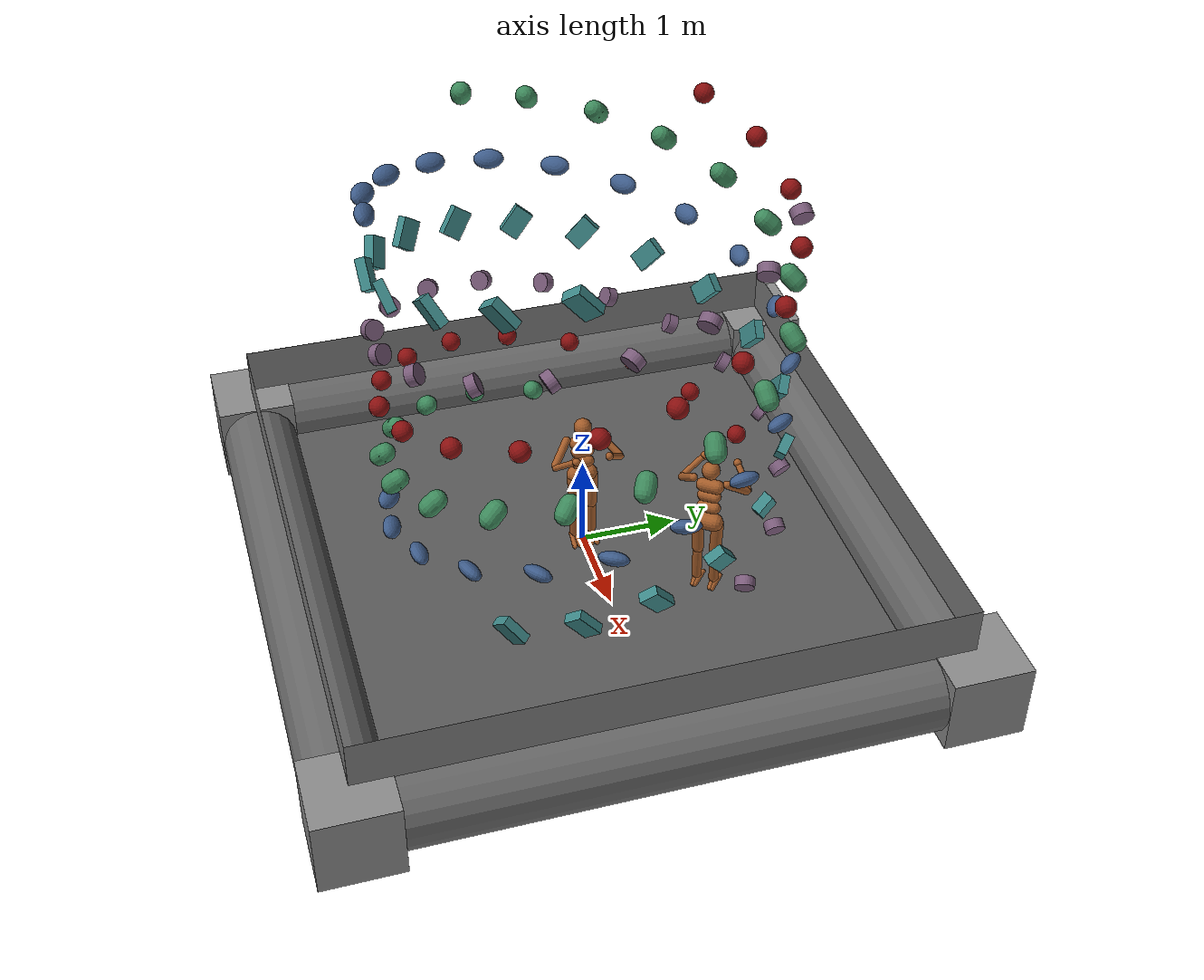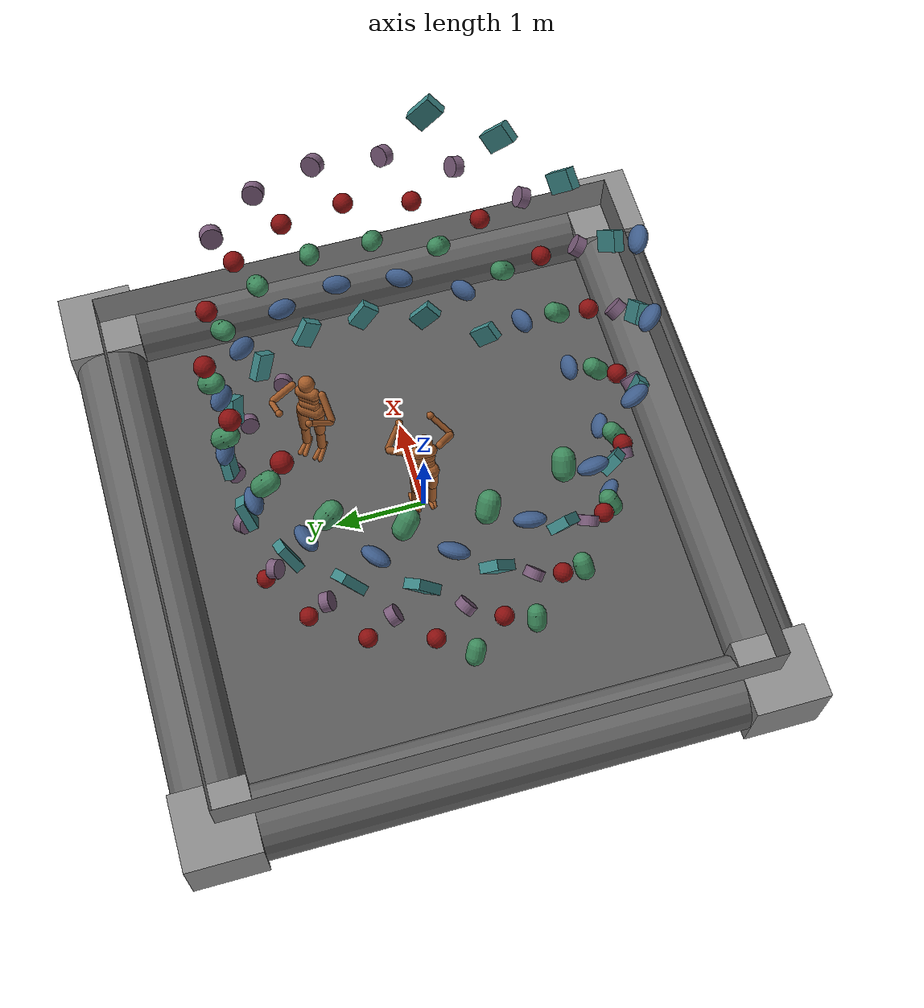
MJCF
<mujoco model="2 Humanoids and 100 objects">
  <compiler angle="radian"/>

  <option timestep="0.005" gravity="-1 -1 -10">
    <flag island="disable"/>
  </option>

  <size memory="100M" nkey="8"/>

  <visual>
    <quality offsamples="8"/>
    <map force="0.05" znear="0.1"/>
  </visual>

  <statistic extent="4"/>

  <default>
    <geom solimp="0.9 0.9 0.01"/>
    <default class="capsule">
      <geom size="0.1 0.05 0" type="capsule" material="capsule"/>
    </default>
    <default class="ellipsoid">
      <geom size="0.15 0.1 0.07" type="ellipsoid" material="ellipsoid"/>
    </default>
    <default class="box">
      <geom size="0.15 0.1 0.05" type="box" material="box"/>
    </default>
    <default class="cylinder">
      <geom size="0.1 0.05 0" type="cylinder" condim="4" friction="1 0.01 0.01" material="cylinder"/>
    </default>
    <default class="sphere">
      <geom size="0.1 0 0" material="sphere"/>
    </default>
    <default class="border">
      <geom size="0.4 0 0" type="capsule" rgba="0.4 0.4 0.4 1"/>
    </default>
    <default class="borderpost">
      <geom size="0.41 0.41 0.41" type="box" rgba="0.55 0.55 0.55 1"/>
    </default>
    <default class="1_main">
      <geom solimp="0.9 0.95 0.001"/>
      <general ctrllimited="true" ctrlrange="-1 1"/>
      <default class="1_body">
        <joint solimplimit="0 0.99 0.01" stiffness="1" limited="true" armature="0.01" damping="0.2"/>
        <geom type="capsule" condim="1" group="1" friction="0.7" solref="0.015" solimp="0.9 0.99 0.003" material="body"/>
        <default class="1_thigh">
          <geom size="0.06 0 0"/>
        </default>
        <default class="1_shin">
          <geom size="0.049 0 0"/>
        </default>
        <default class="1_foot">
          <geom size="0.027 0 0"/>
          <default class="1_foot1"/>
          <default class="1_foot2"/>
        </default>
        <default class="1_arm_upper">
          <geom size="0.04 0 0"/>
        </default>
        <default class="1_arm_lower">
          <geom size="0.031 0 0"/>
        </default>
        <default class="1_hand">
          <geom size="0.04 0 0" type="sphere"/>
        </default>
        <default class="1_joint_big">
          <joint stiffness="10" damping="5"/>
          <default class="1_hip_x">
            <joint range="-30 10"/>
          </default>
          <default class="1_hip_z">
            <joint range="-60 35"/>
          </default>
          <default class="1_hip_y">
            <joint range="-150 20"/>
          </default>
          <default class="1_joint_big_stiff">
            <joint stiffness="20"/>
          </default>
        </default>
        <default class="1_knee">
          <joint range="-160 2"/>
        </default>
        <default class="1_ankle">
          <joint range="-50 50"/>
          <default class="1_ankle_y">
            <joint stiffness="6"/>
          </default>
          <default class="1_ankle_x">
            <joint stiffness="3"/>
          </default>
        </default>
        <default class="1_shoulder">
          <joint range="-85 60"/>
        </default>
        <default class="1_elbow">
          <joint stiffness="0" range="-100 50"/>
        </default>
      </default>
    </default>
    <default class="2_main">
      <geom solimp="0.9 0.95 0.001"/>
      <general ctrllimited="true" ctrlrange="-1 1"/>
      <default class="2_body">
        <joint solimplimit="0 0.99 0.01" stiffness="1" limited="true" armature="0.01" damping="0.2"/>
        <geom type="capsule" condim="1" group="1" friction="0.7" solref="0.015" solimp="0.9 0.99 0.003" material="body"/>
        <default class="2_thigh">
          <geom size="0.06 0 0"/>
        </default>
        <default class="2_shin">
          <geom size="0.049 0 0"/>
        </default>
        <default class="2_foot">
          <geom size="0.027 0 0"/>
          <default class="2_foot1"/>
          <default class="2_foot2"/>
        </default>
        <default class="2_arm_upper">
          <geom size="0.04 0 0"/>
        </default>
        <default class="2_arm_lower">
          <geom size="0.031 0 0"/>
        </default>
        <default class="2_hand">
          <geom size="0.04 0 0" type="sphere"/>
        </default>
        <default class="2_joint_big">
          <joint stiffness="10" damping="5"/>
          <default class="2_hip_x">
            <joint range="-30 10"/>
          </default>
          <default class="2_hip_z">
            <joint range="-60 35"/>
          </default>
          <default class="2_hip_y">
            <joint range="-150 20"/>
          </default>
          <default class="2_joint_big_stiff">
            <joint stiffness="20"/>
          </default>
        </default>
        <default class="2_knee">
          <joint range="-160 2"/>
        </default>
        <default class="2_ankle">
          <joint range="-50 50"/>
          <default class="2_ankle_y">
            <joint stiffness="6"/>
          </default>
          <default class="2_ankle_x">
            <joint stiffness="3"/>
          </default>
        </default>
        <default class="2_shoulder">
          <joint range="-85 60"/>
        </default>
        <default class="2_elbow">
          <joint stiffness="0" range="-100 50"/>
        </default>
      </default>
    </default>
  </default>

  <asset>
    <texture type="skybox" colorspace="auto" builtin="gradient" rgb1="0.4 0.6 0.8" rgb2="0 0 0" width="512" height="3072"/>
    <texture type="cube" colorspace="auto" name="texgeom" builtin="flat" mark="cross" rgb1="0.6 0.6 0.6" rgb2="0.6 0.6 0.6" markrgb="1 1 1" width="128" height="768"/>
    <texture type="2d" colorspace="auto" name="texplane" builtin="checker" rgb1="0.4 0.4 0.4" rgb2="0.6 0.6 0.6" width="512" height="512"/>
    <texture type="skybox" colorspace="auto" builtin="gradient" rgb1="0.3 0.5 0.7" rgb2="0 0 0" width="32" height="192"/>
    <texture type="cube" colorspace="auto" name="1_body" builtin="flat" mark="cross" rgb1="0.8 0.6 0.4" rgb2="0.8 0.6 0.4" markrgb="1 1 1" width="128" height="768"/>
    <texture type="2d" colorspace="auto" name="1_grid" builtin="checker" rgb1="0.1 0.2 0.3" rgb2="0.2 0.3 0.4" width="512" height="512"/>
    <texture type="skybox" colorspace="auto" builtin="gradient" rgb1="0.3 0.5 0.7" rgb2="0 0 0" width="32" height="192"/>
    <texture type="cube" colorspace="auto" name="2_body" builtin="flat" mark="cross" rgb1="0.8 0.6 0.4" rgb2="0.8 0.6 0.4" markrgb="1 1 1" width="128" height="768"/>
    <texture type="2d" colorspace="auto" name="2_grid" builtin="checker" rgb1="0.1 0.2 0.3" rgb2="0.2 0.3 0.4" width="512" height="512"/>
    <material name="MatPlane" texture="texplane" texuniform="true" reflectance="0.3" rgba="0.7 0.7 0.7 1"/>
    <material name="capsule" texture="texgeom" texuniform="true" rgba="0.4 0.9 0.6 1"/>
    <material name="ellipsoid" texture="texgeom" texuniform="true" rgba="0.4 0.6 0.9 1"/>
    <material name="box" texture="texgeom" texuniform="true" rgba="0.4 0.9 0.9 1"/>
    <material name="cylinder" texture="texgeom" texuniform="true" rgba="0.8 0.6 0.8 1"/>
    <material name="sphere" texture="texgeom" texuniform="true" rgba="0.9 0.1 0.1 1"/>
    <material name="1_body" texture="1_body" texuniform="true" rgba="0.8 0.6 0.4 1"/>
    <material name="1_grid" texture="1_grid" texuniform="true" reflectance="0.2"/>
    <material name="2_body" texture="2_body" texuniform="true" rgba="0.8 0.6 0.4 1"/>
    <material name="2_grid" texture="2_grid" texuniform="true" reflectance="0.2"/>
  </asset>

  <worldbody>
    <geom name="floor" size="3 3 0.5" type="plane" material="MatPlane"/>
    <geom class="border" size="0.4 3" pos="0 3 0" quat="0.707107 0 -0.707107 0"/>
    <geom class="border" size="0.4 3" pos="0 -3 0" quat="0.707107 0 -0.707107 0"/>
    <geom class="border" size="0.4 3" pos="3 0 0" quat="0.707107 -0.707107 0 0"/>
    <geom class="border" size="0.4 3" pos="-3 0 0" quat="0.707107 -0.707107 0 0"/>
    <geom class="borderpost" pos="3 3 0"/>
    <geom class="borderpost" pos="-3 3 0"/>
    <geom class="borderpost" pos="3 -3 0"/>
    <geom class="borderpost" pos="-3 -3 0"/>
    <light pos="0 0 10" dir="0 0 -1" type="directional" diffuse="0.8 0.8 0.8"/>
    <geom size="0.5 3 0.05" pos="-3 0 0.4" quat="0.707107 0 0.707107 0" type="plane"/>
    <geom size="0.5 3 0.05" pos="0 -3 0.4" quat="0.5 -0.5 0.5 0.5" type="plane"/>
    <geom size="0.5 3 0.05" pos="3 0 0.4" quat="0 -0.707107 0 0.707107" type="plane"/>
    <geom size="0.5 3 0.05" pos="0 3 0.4" quat="-0.5 -0.5 -0.5 0.5" type="plane"/>
    <body pos="-2 0 0.5" quat="0.907673 0.24321 0.330366 0.0885213">
      <joint type="free"/>
      <geom class="capsule"/>
    </body>
    <body pos="-1.87939 -0.68404 0.7" quat="0.878512 0.182148 0.36758 0.244792">
      <joint type="free"/>
      <geom class="capsule"/>
    </body>
    <body pos="-1.53209 -1.28558 0.9" quat="0.822658 0.115551 0.393625 0.393625">
      <joint type="free"/>
      <geom class="capsule"/>
    </body>
    <body pos="-1 -1.73205 1.1" quat="0.741808 0.0454433 0.407711 0.530498">
      <joint type="free"/>
      <geom class="capsule"/>
    </body>
    <body pos="-0.347296 -1.96962 1.3" quat="0.638418 -0.0260453 0.409408 0.651252">
      <joint type="free"/>
      <geom class="capsule"/>
    </body>
    <body pos="0.347296 -1.96962 1.5" quat="0.51563 -0.0967425 0.398665 0.752219">
      <joint type="free"/>
      <geom class="capsule"/>
    </body>
    <body pos="1 -1.73205 1.7" quat="0.377175 -0.1645 0.375809 0.830329">
      <joint type="free"/>
      <geom class="capsule"/>
    </body>
    <body pos="1.53209 -1.28558 1.9" quat="0.22726 -0.22726 0.341535 0.88321">
      <joint type="free"/>
      <geom class="capsule"/>
    </body>
    <body pos="1.87939 -0.68404 2.1" quat="0.0704393 -0.283114 0.296883 0.909255">
      <joint type="free"/>
      <geom class="capsule"/>
    </body>
    <body pos="2 0 2.3" quat="-0.0885213 -0.330366 0.24321 0.907673">
      <joint type="free"/>
      <geom class="capsule"/>
    </body>
    <body pos="1.87939 0.68404 2.5" quat="-0.244792 -0.36758 0.182148 0.878512">
      <joint type="free"/>
      <geom class="capsule"/>
    </body>
    <body pos="1.53209 1.28558 2.7" quat="-0.393625 -0.393625 0.115551 0.822658">
      <joint type="free"/>
      <geom class="capsule"/>
    </body>
    <body pos="1 1.73205 2.9" quat="-0.530498 -0.407711 0.0454433 0.741808">
      <joint type="free"/>
      <geom class="capsule"/>
    </body>
    <body pos="0.347296 1.96962 3.1" quat="-0.651252 -0.409408 -0.0260453 0.638418">
      <joint type="free"/>
      <geom class="capsule"/>
    </body>
    <body pos="-0.347296 1.96962 3.3" quat="-0.752219 -0.398665 -0.0967425 0.51563">
      <joint type="free"/>
      <geom class="capsule"/>
    </body>
    <body pos="-1 1.73205 3.5" quat="-0.830329 -0.375809 -0.1645 0.377175">
      <joint type="free"/>
      <geom class="capsule"/>
    </body>
    <body pos="-1.53209 1.28558 3.7" quat="-0.88321 -0.341535 -0.22726 0.22726">
      <joint type="free"/>
      <geom class="capsule"/>
    </body>
    <body pos="-1.87939 0.68404 3.9" quat="-0.909255 -0.296883 -0.283114 0.0704393">
      <joint type="free"/>
      <geom class="capsule"/>
    </body>
    <body pos="-2 0 4.1" quat="-0.907673 -0.24321 -0.330366 -0.0885213">
      <joint type="free"/>
      <geom class="capsule"/>
    </body>
    <body pos="-1.87939 -0.68404 4.3" quat="-0.878512 -0.182148 -0.36758 -0.244792">
      <joint type="free"/>
      <geom class="capsule"/>
    </body>
    <body name="1_torso" childclass="1_body" pos="0 0 1.282">
      <joint name="1_root" type="free" solimplimit="0.9 0.95 0.001" stiffness="0" armature="0" damping="0"/>
      <geom name="1_torso" size="0.07 0.07" quat="0.707107 0.707107 0 0" material="1_body"/>
      <geom name="1_waist_upper" size="0.06 0.06" pos="-0.01 0 -0.12" quat="0.707107 0.707107 0 0" material="1_body"/>
      <camera name="1_back" pos="-3 0 1" quat="0.601501 0.371748 -0.371748 -0.601501" mode="trackcom"/>
      <camera name="1_side" pos="0 -3 1" quat="0.850651 0.525731 0 0" mode="trackcom"/>
      <body name="1_head" pos="0 0 0.19">
        <geom name="1_head" size="0.09" type="sphere" material="1_body"/>
        <camera name="1_egocentric" pos="0.09 0 0" quat="0.524286 0.474472 -0.474472 -0.524286" fovy="80"/>
      </body>
      <body name="1_waist_lower" pos="-0.01 0 -0.26">
        <joint name="1_abdomen_z" class="1_joint_big_stiff" pos="0 0 0.065" axis="0 0 1" range="-0.785398 0.785398"/>
        <joint name="1_abdomen_y" class="1_joint_big" pos="0 0 0.065" axis="0 1 0" range="-1.309 0.523599"/>
        <geom name="1_waist_lower" size="0.06 0.06" quat="0.707107 0.707107 0 0" material="1_body"/>
        <body name="1_pelvis" pos="0 0 -0.165">
          <joint name="1_abdomen_x" class="1_joint_big" pos="0 0 0.1" axis="1 0 0" range="-0.610865 0.610865"/>
          <geom name="1_butt" size="0.09 0.07" pos="-0.02 0 0" quat="0.707107 0.707107 0 0" material="1_body"/>
          <body name="1_thigh_right" pos="0 -0.1 -0.04">
            <joint name="1_hip_x_right" class="1_hip_x" pos="0 0 0" axis="1 0 0" range="-0.523599 0.174533"/>
            <joint name="1_hip_z_right" class="1_hip_z" pos="0 0 0" axis="0 0 1" range="-1.0472 0.610865"/>
            <joint name="1_hip_y_right" class="1_hip_y" pos="0 0 0" axis="0 1 0" range="-2.61799 0.349066"/>
            <geom name="1_thigh_right" class="1_thigh" size="0.06 0.170074" pos="0 0.005 -0.17" quat="0.999892 0.0147011 0 0" material="1_body"/>
            <body name="1_shin_right" pos="0 0.01 -0.4">
              <joint name="1_knee_right" class="1_knee" pos="0 0 0.02" axis="0 -1 0" range="-2.79253 0.0349066"/>
              <geom name="1_shin_right" class="1_shin" size="0.049 0.15" pos="0 0 -0.15" material="1_body"/>
              <body name="1_foot_right" pos="0 0 -0.39">
                <joint name="1_ankle_y_right" class="1_ankle_y" pos="0 0 0.08" axis="0 1 0" range="-0.872665 0.872665"/>
                <joint name="1_ankle_x_right" class="1_ankle_x" pos="0 0 0.04" axis="0.894427 0 0.447214" range="-0.872665 0.872665"/>
                <geom name="1_foot1_right" class="1_foot1" size="0.027 0.105475" pos="0.035 -0.02 0" quat="0.707107 -0.0670402 -0.703922 0" material="1_body"/>
                <geom name="1_foot2_right" class="1_foot2" size="0.027 0.105475" pos="0.035 0.02 0" quat="0.707107 0.0670402 -0.703922 0" material="1_body"/>
              </body>
            </body>
          </body>
          <body name="1_thigh_left" pos="0 0.1 -0.04">
            <joint name="1_hip_x_left" class="1_hip_x" pos="0 0 0" axis="-1 0 0" range="-0.523599 0.174533"/>
            <joint name="1_hip_z_left" class="1_hip_z" pos="0 0 0" axis="0 0 -1" range="-1.0472 0.610865"/>
            <joint name="1_hip_y_left" class="1_hip_y" pos="0 0 0" axis="0 1 0" range="-2.61799 0.349066"/>
            <geom name="1_thigh_left" class="1_thigh" size="0.06 0.170074" pos="0 -0.005 -0.17" quat="0.999892 -0.0147011 0 0" material="1_body"/>
            <body name="1_shin_left" pos="0 -0.01 -0.4">
              <joint name="1_knee_left" class="1_knee" pos="0 0 0.02" axis="0 -1 0" range="-2.79253 0.0349066"/>
              <geom name="1_shin_left" class="1_shin" size="0.049 0.15" pos="0 0 -0.15" material="1_body"/>
              <body name="1_foot_left" pos="0 0 -0.39">
                <joint name="1_ankle_y_left" class="1_ankle_y" pos="0 0 0.08" axis="0 1 0" range="-0.872665 0.872665"/>
                <joint name="1_ankle_x_left" class="1_ankle_x" pos="0 0 0.04" axis="-0.894427 0 -0.447214" range="-0.872665 0.872665"/>
                <geom name="1_foot1_left" class="1_foot1" size="0.027 0.105475" pos="0.035 -0.02 0" quat="0.707107 -0.0670402 -0.703922 0" material="1_body"/>
                <geom name="1_foot2_left" class="1_foot2" size="0.027 0.105475" pos="0.035 0.02 0" quat="0.707107 0.0670402 -0.703922 0" material="1_body"/>
              </body>
            </body>
          </body>
        </body>
      </body>
      <body name="1_upper_arm_right" pos="0 -0.17 0.06">
        <joint name="1_shoulder1_right" class="1_shoulder" pos="0 0 0" axis="0.816497 0.408248 0.408248" range="-1.48353 1.0472"/>
        <joint name="1_shoulder2_right" class="1_shoulder" pos="0 0 0" axis="0 -0.707107 0.707107" range="-1.48353 1.0472"/>
        <geom name="1_upper_arm_right" class="1_arm_upper" size="0.04 0.138564" pos="0.08 -0.08 -0.08" quat="0.888074 -0.325058 -0.325058 0" material="1_body"/>
        <body name="1_lower_arm_right" pos="0.18 -0.18 -0.18">
          <joint name="1_elbow_right" class="1_elbow" pos="0 0 0" axis="0 -0.707107 0.707107" range="-1.74533 0.872665"/>
          <geom name="1_lower_arm_right" class="1_arm_lower" size="0.031 0.138564" pos="0.09 0.09 0.09" quat="0.459701 0.627963 -0.627963 0" material="1_body"/>
          <body name="1_hand_right" pos="0.18 0.18 0.18">
            <geom name="1_hand_right" class="1_hand" quat="0.888074 -0.325058 0.325058 0" material="1_body"/>
          </body>
        </body>
      </body>
      <body name="1_upper_arm_left" pos="0 0.17 0.06">
        <joint name="1_shoulder1_left" class="1_shoulder" pos="0 0 0" axis="-0.816497 0.408248 -0.408248" range="-1.48353 1.0472"/>
        <joint name="1_shoulder2_left" class="1_shoulder" pos="0 0 0" axis="0 -0.707107 -0.707107" range="-1.48353 1.0472"/>
        <geom name="1_upper_arm_left" class="1_arm_upper" size="0.04 0.138564" pos="0.08 0.08 -0.08" quat="0.888074 0.325058 -0.325058 0" material="1_body"/>
        <body name="1_lower_arm_left" pos="0.18 0.18 -0.18">
          <joint name="1_elbow_left" class="1_elbow" pos="0 0 0" axis="0 -0.707107 -0.707107" range="-1.74533 0.872665"/>
          <geom name="1_lower_arm_left" class="1_arm_lower" size="0.031 0.138564" pos="0.09 -0.09 0.09" quat="0.459701 -0.627963 -0.627963 0" material="1_body"/>
          <body name="1_hand_left" pos="0.18 -0.18 0.18">
            <geom name="1_hand_left" class="1_hand" quat="0.888074 0.325058 0.325058 0" material="1_body"/>
          </body>
        </body>
      </body>
    </body>
    <body pos="-0.618034 -1.90211 0.5" quat="0.322144 0.127074 0.352035 0.869567">
      <joint type="free"/>
      <geom class="ellipsoid"/>
    </body>
    <body pos="0.069799 -1.99878 0.7" quat="0.166252 0.0640135 0.368753 0.912296">
      <joint type="free"/>
      <geom class="ellipsoid"/>
    </body>
    <body pos="0.749213 -1.85437 0.9" quat="0.0053073 -0.000992425 0.374267 0.927305">
      <joint type="free"/>
      <geom class="ellipsoid"/>
    </body>
    <body pos="1.33826 -1.48629 1.1" quat="-0.155798 -0.0659681 0.368409 0.914139">
      <joint type="free"/>
      <geom class="ellipsoid"/>
    </body>
    <body pos="1.7659 -0.938943 1.3" quat="-0.31217 -0.128939 0.351357 0.873197">
      <joint type="free"/>
      <geom class="ellipsoid"/>
    </body>
    <body pos="1.98054 -0.278346 1.5" quat="-0.459056 -0.187993 0.323629 0.805724">
      <joint type="free"/>
      <geom class="ellipsoid"/>
    </body>
    <body pos="1.9563 0.415823 1.7" quat="-0.591995 -0.241334 0.286067 0.713768">
      <joint type="free"/>
      <geom class="ellipsoid"/>
    </body>
    <body pos="1.6961 1.05984 1.9" quat="-0.706946 -0.287343 0.239814 0.600126">
      <joint type="free"/>
      <geom class="ellipsoid"/>
    </body>
    <body pos="1.23132 1.57602 2.1" quat="-0.800416 -0.324621 0.186274 0.468249">
      <joint type="free"/>
      <geom class="ellipsoid"/>
    </body>
    <body pos="0.618034 1.90211 2.3" quat="-0.869567 -0.352035 0.127074 0.322144">
      <joint type="free"/>
      <geom class="ellipsoid"/>
    </body>
    <body pos="-0.069799 1.99878 2.5" quat="-0.912296 -0.368753 0.0640135 0.166252">
      <joint type="free"/>
      <geom class="ellipsoid"/>
    </body>
    <body pos="-0.749213 1.85437 2.7" quat="-0.927305 -0.374267 -0.000992425 0.0053073">
      <joint type="free"/>
      <geom class="ellipsoid"/>
    </body>
    <body pos="-1.33826 1.48629 2.9" quat="-0.914139 -0.368409 -0.0659681 -0.155798">
      <joint type="free"/>
      <geom class="ellipsoid"/>
    </body>
    <body pos="-1.7659 0.938943 3.1" quat="-0.873197 -0.351357 -0.128939 -0.31217">
      <joint type="free"/>
      <geom class="ellipsoid"/>
    </body>
    <body pos="-1.98054 0.278346 3.3" quat="-0.805724 -0.323629 -0.187993 -0.459056">
      <joint type="free"/>
      <geom class="ellipsoid"/>
    </body>
    <body pos="-1.9563 -0.415823 3.5" quat="-0.713768 -0.286067 -0.241334 -0.591995">
      <joint type="free"/>
      <geom class="ellipsoid"/>
    </body>
    <body pos="-1.6961 -1.05984 3.7" quat="-0.600126 -0.239814 -0.287343 -0.706946">
      <joint type="free"/>
      <geom class="ellipsoid"/>
    </body>
    <body pos="-1.23132 -1.57602 3.9" quat="-0.468249 -0.186274 -0.324621 -0.800416">
      <joint type="free"/>
      <geom class="ellipsoid"/>
    </body>
    <body pos="-0.618034 -1.90211 4.1" quat="-0.322144 -0.127074 -0.352035 -0.869567">
      <joint type="free"/>
      <geom class="ellipsoid"/>
    </body>
    <body pos="0.069799 -1.99878 4.3" quat="-0.166252 -0.0640135 -0.368753 -0.912296">
      <joint type="free"/>
      <geom class="ellipsoid"/>
    </body>
    <body pos="1.61803 -1.17557 0.5" quat="-0.59474 0.0407649 0.59181 0.542572">
      <joint type="free"/>
      <geom class="box"/>
    </body>
    <body pos="1.92252 -0.551275 0.7" quat="-0.679921 -0.0626212 0.589898 0.431053">
      <joint type="free"/>
      <geom class="box"/>
    </body>
    <body pos="1.99513 0.139513 0.9" quat="-0.744443 -0.164105 0.570062 0.306438">
      <joint type="free"/>
      <geom class="box"/>
    </body>
    <body pos="1.82709 0.813473 1.1" quat="-0.786345 -0.260602 0.532905 0.172511">
      <joint type="free"/>
      <geom class="box"/>
    </body>
    <body pos="1.43868 1.38932 1.3" quat="-0.804355 -0.34918 0.479556 0.0333426">
      <joint type="free"/>
      <geom class="box"/>
    </body>
    <body pos="0.876742 1.79759 1.5" quat="-0.797925 -0.42715 0.411636 -0.106839">
      <joint type="free"/>
      <geom class="box"/>
    </body>
    <body pos="0.209057 1.98904 1.7" quat="-0.767251 -0.49214 0.331208 -0.243774">
      <joint type="free"/>
      <geom class="box"/>
    </body>
    <body pos="-0.483844 1.94059 1.9" quat="-0.713263 -0.542177 0.240717 -0.373302">
      <joint type="free"/>
      <geom class="box"/>
    </body>
    <body pos="-1.11839 1.65808 2.1" quat="-0.637604 -0.57574 0.142912 -0.491488">
      <joint type="free"/>
      <geom class="box"/>
    </body>
    <body pos="-1.61803 1.17557 2.3" quat="-0.542572 -0.59181 0.0407649 -0.59474">
      <joint type="free"/>
      <geom class="box"/>
    </body>
    <body pos="-1.92252 0.551275 2.5" quat="-0.431053 -0.589898 -0.0626212 -0.679921">
      <joint type="free"/>
      <geom class="box"/>
    </body>
    <body pos="-1.99513 -0.139513 2.7" quat="-0.306438 -0.570062 -0.164105 -0.744443">
      <joint type="free"/>
      <geom class="box"/>
    </body>
    <body pos="-1.82709 -0.813473 2.9" quat="-0.172511 -0.532905 -0.260602 -0.786345">
      <joint type="free"/>
      <geom class="box"/>
    </body>
    <body pos="-1.43868 -1.38932 3.1" quat="-0.0333426 -0.479556 -0.34918 -0.804355">
      <joint type="free"/>
      <geom class="box"/>
    </body>
    <body pos="-0.876742 -1.79759 3.3" quat="0.106839 -0.411636 -0.42715 -0.797925">
      <joint type="free"/>
      <geom class="box"/>
    </body>
    <body pos="-0.209057 -1.98904 3.5" quat="0.243774 -0.331208 -0.49214 -0.767251">
      <joint type="free"/>
      <geom class="box"/>
    </body>
    <body pos="0.483844 -1.94059 3.7" quat="0.373302 -0.240717 -0.542177 -0.713263">
      <joint type="free"/>
      <geom class="box"/>
    </body>
    <body pos="1.11839 -1.65808 3.9" quat="0.491488 -0.142912 -0.57574 -0.637604">
      <joint type="free"/>
      <geom class="box"/>
    </body>
    <body pos="1.61803 -1.17557 4.1" quat="0.59474 -0.0407649 -0.59181 -0.542572">
      <joint type="free"/>
      <geom class="box"/>
    </body>
    <body pos="1.92252 -0.551275 4.3" quat="0.679921 0.0626212 -0.589898 -0.431053">
      <joint type="free"/>
      <geom class="box"/>
    </body>
    <body name="2_torso" childclass="2_body" pos="1 1 1.282" quat="0.309017 0 0 0.951057">
      <joint name="2_root" type="free" solimplimit="0.9 0.95 0.001" stiffness="0" armature="0" damping="0"/>
      <geom name="2_torso" size="0.07 0.07" quat="0.707107 0.707107 0 0" material="2_body"/>
      <geom name="2_waist_upper" size="0.06 0.06" pos="-0.01 0 -0.12" quat="0.707107 0.707107 0 0" material="2_body"/>
      <camera name="2_back" pos="-3 0 1" quat="0.601501 0.371748 -0.371748 -0.601501" mode="trackcom"/>
      <camera name="2_side" pos="0 -3 1" quat="0.850651 0.525731 0 0" mode="trackcom"/>
      <body name="2_head" pos="0 0 0.19">
        <geom name="2_head" size="0.09" type="sphere" material="2_body"/>
        <camera name="2_egocentric" pos="0.09 0 0" quat="0.524286 0.474472 -0.474472 -0.524286" fovy="80"/>
      </body>
      <body name="2_waist_lower" pos="-0.01 0 -0.26">
        <joint name="2_abdomen_z" class="2_joint_big_stiff" pos="0 0 0.065" axis="0 0 1" range="-0.785398 0.785398"/>
        <joint name="2_abdomen_y" class="2_joint_big" pos="0 0 0.065" axis="0 1 0" range="-1.309 0.523599"/>
        <geom name="2_waist_lower" size="0.06 0.06" quat="0.707107 0.707107 0 0" material="2_body"/>
        <body name="2_pelvis" pos="0 0 -0.165">
          <joint name="2_abdomen_x" class="2_joint_big" pos="0 0 0.1" axis="1 0 0" range="-0.610865 0.610865"/>
          <geom name="2_butt" size="0.09 0.07" pos="-0.02 0 0" quat="0.707107 0.707107 0 0" material="2_body"/>
          <body name="2_thigh_right" pos="0 -0.1 -0.04">
            <joint name="2_hip_x_right" class="2_hip_x" pos="0 0 0" axis="1 0 0" range="-0.523599 0.174533"/>
            <joint name="2_hip_z_right" class="2_hip_z" pos="0 0 0" axis="0 0 1" range="-1.0472 0.610865"/>
            <joint name="2_hip_y_right" class="2_hip_y" pos="0 0 0" axis="0 1 0" range="-2.61799 0.349066"/>
            <geom name="2_thigh_right" class="2_thigh" size="0.06 0.170074" pos="0 0.005 -0.17" quat="0.999892 0.0147011 0 0" material="2_body"/>
            <body name="2_shin_right" pos="0 0.01 -0.4">
              <joint name="2_knee_right" class="2_knee" pos="0 0 0.02" axis="0 -1 0" range="-2.79253 0.0349066"/>
              <geom name="2_shin_right" class="2_shin" size="0.049 0.15" pos="0 0 -0.15" material="2_body"/>
              <body name="2_foot_right" pos="0 0 -0.39">
                <joint name="2_ankle_y_right" class="2_ankle_y" pos="0 0 0.08" axis="0 1 0" range="-0.872665 0.872665"/>
                <joint name="2_ankle_x_right" class="2_ankle_x" pos="0 0 0.04" axis="0.894427 0 0.447214" range="-0.872665 0.872665"/>
                <geom name="2_foot1_right" class="2_foot1" size="0.027 0.105475" pos="0.035 -0.02 0" quat="0.707107 -0.0670402 -0.703922 0" material="2_body"/>
                <geom name="2_foot2_right" class="2_foot2" size="0.027 0.105475" pos="0.035 0.02 0" quat="0.707107 0.0670402 -0.703922 0" material="2_body"/>
              </body>
            </body>
          </body>
          <body name="2_thigh_left" pos="0 0.1 -0.04">
            <joint name="2_hip_x_left" class="2_hip_x" pos="0 0 0" axis="-1 0 0" range="-0.523599 0.174533"/>
            <joint name="2_hip_z_left" class="2_hip_z" pos="0 0 0" axis="0 0 -1" range="-1.0472 0.610865"/>
            <joint name="2_hip_y_left" class="2_hip_y" pos="0 0 0" axis="0 1 0" range="-2.61799 0.349066"/>
            <geom name="2_thigh_left" class="2_thigh" size="0.06 0.170074" pos="0 -0.005 -0.17" quat="0.999892 -0.0147011 0 0" material="2_body"/>
            <body name="2_shin_left" pos="0 -0.01 -0.4">
              <joint name="2_knee_left" class="2_knee" pos="0 0 0.02" axis="0 -1 0" range="-2.79253 0.0349066"/>
              <geom name="2_shin_left" class="2_shin" size="0.049 0.15" pos="0 0 -0.15" material="2_body"/>
              <body name="2_foot_left" pos="0 0 -0.39">
                <joint name="2_ankle_y_left" class="2_ankle_y" pos="0 0 0.08" axis="0 1 0" range="-0.872665 0.872665"/>
                <joint name="2_ankle_x_left" class="2_ankle_x" pos="0 0 0.04" axis="-0.894427 0 -0.447214" range="-0.872665 0.872665"/>
                <geom name="2_foot1_left" class="2_foot1" size="0.027 0.105475" pos="0.035 -0.02 0" quat="0.707107 -0.0670402 -0.703922 0" material="2_body"/>
                <geom name="2_foot2_left" class="2_foot2" size="0.027 0.105475" pos="0.035 0.02 0" quat="0.707107 0.0670402 -0.703922 0" material="2_body"/>
              </body>
            </body>
          </body>
        </body>
      </body>
      <body name="2_upper_arm_right" pos="0 -0.17 0.06">
        <joint name="2_shoulder1_right" class="2_shoulder" pos="0 0 0" axis="0.816497 0.408248 0.408248" range="-1.48353 1.0472"/>
        <joint name="2_shoulder2_right" class="2_shoulder" pos="0 0 0" axis="0 -0.707107 0.707107" range="-1.48353 1.0472"/>
        <geom name="2_upper_arm_right" class="2_arm_upper" size="0.04 0.138564" pos="0.08 -0.08 -0.08" quat="0.888074 -0.325058 -0.325058 0" material="2_body"/>
        <body name="2_lower_arm_right" pos="0.18 -0.18 -0.18">
          <joint name="2_elbow_right" class="2_elbow" pos="0 0 0" axis="0 -0.707107 0.707107" range="-1.74533 0.872665"/>
          <geom name="2_lower_arm_right" class="2_arm_lower" size="0.031 0.138564" pos="0.09 0.09 0.09" quat="0.459701 0.627963 -0.627963 0" material="2_body"/>
          <body name="2_hand_right" pos="0.18 0.18 0.18">
            <geom name="2_hand_right" class="2_hand" quat="0.888074 -0.325058 0.325058 0" material="2_body"/>
          </body>
        </body>
      </body>
      <body name="2_upper_arm_left" pos="0 0.17 0.06">
        <joint name="2_shoulder1_left" class="2_shoulder" pos="0 0 0" axis="-0.816497 0.408248 -0.408248" range="-1.48353 1.0472"/>
        <joint name="2_shoulder2_left" class="2_shoulder" pos="0 0 0" axis="0 -0.707107 -0.707107" range="-1.48353 1.0472"/>
        <geom name="2_upper_arm_left" class="2_arm_upper" size="0.04 0.138564" pos="0.08 0.08 -0.08" quat="0.888074 0.325058 -0.325058 0" material="2_body"/>
        <body name="2_lower_arm_left" pos="0.18 0.18 -0.18">
          <joint name="2_elbow_left" class="2_elbow" pos="0 0 0" axis="0 -0.707107 -0.707107" range="-1.74533 0.872665"/>
          <geom name="2_lower_arm_left" class="2_arm_lower" size="0.031 0.138564" pos="0.09 -0.09 0.09" quat="0.459701 -0.627963 -0.627963 0" material="2_body"/>
          <body name="2_hand_left" pos="0.18 -0.18 0.18">
            <geom name="2_hand_left" class="2_hand" quat="0.888074 0.325058 0.325058 0" material="2_body"/>
          </body>
        </body>
      </body>
    </body>
    <body pos="1.61803 1.17557 0.5" quat="-0.381574 -0.362417 0.390061 0.755585">
      <joint type="free"/>
      <geom class="cylinder"/>
    </body>
    <body pos="1.11839 1.65808 0.7" quat="-0.506982 -0.424645 0.321202 0.677846">
      <joint type="free"/>
      <geom class="cylinder"/>
    </body>
    <body pos="0.483844 1.94059 0.9" quat="-0.616987 -0.473969 0.242583 0.579511">
      <joint type="free"/>
      <geom class="cylinder"/>
    </body>
    <body pos="-0.209057 1.98904 1.1" quat="-0.708245 -0.508893 0.156594 0.463569">
      <joint type="free"/>
      <geom class="cylinder"/>
    </body>
    <body pos="-0.876742 1.79759 1.3" quat="-0.777983 -0.528354 0.0658466 0.333541">
      <joint type="free"/>
      <geom class="cylinder"/>
    </body>
    <body pos="-1.43868 1.38932 1.5" quat="-0.824082 -0.531761 -0.0269015 0.193378">
      <joint type="free"/>
      <geom class="cylinder"/>
    </body>
    <body pos="-1.82709 0.813473 1.7" quat="-0.845142 -0.519011 -0.118832 0.0473399">
      <joint type="free"/>
      <geom class="cylinder"/>
    </body>
    <body pos="-1.99513 0.139513 1.9" quat="-0.840523 -0.490491 -0.207152 -0.100137">
      <joint type="free"/>
      <geom class="cylinder"/>
    </body>
    <body pos="-1.92252 -0.551275 2.1" quat="-0.810365 -0.447068 -0.289178 -0.244571">
      <joint type="free"/>
      <geom class="cylinder"/>
    </body>
    <body pos="-1.61803 -1.17557 2.3" quat="-0.755585 -0.390061 -0.362417 -0.381574">
      <joint type="free"/>
      <geom class="cylinder"/>
    </body>
    <body pos="-1.11839 -1.65808 2.5" quat="-0.677846 -0.321202 -0.424645 -0.506982">
      <joint type="free"/>
      <geom class="cylinder"/>
    </body>
    <body pos="-0.483844 -1.94059 2.7" quat="-0.579511 -0.242583 -0.473969 -0.616987">
      <joint type="free"/>
      <geom class="cylinder"/>
    </body>
    <body pos="0.209057 -1.98904 2.9" quat="-0.463569 -0.156594 -0.508893 -0.708245">
      <joint type="free"/>
      <geom class="cylinder"/>
    </body>
    <body pos="0.876742 -1.79759 3.1" quat="-0.333541 -0.0658466 -0.528354 -0.777983">
      <joint type="free"/>
      <geom class="cylinder"/>
    </body>
    <body pos="1.43868 -1.38932 3.3" quat="-0.193378 0.0269015 -0.531761 -0.824082">
      <joint type="free"/>
      <geom class="cylinder"/>
    </body>
    <body pos="1.82709 -0.813473 3.5" quat="-0.0473399 0.118832 -0.519011 -0.845142">
      <joint type="free"/>
      <geom class="cylinder"/>
    </body>
    <body pos="1.99513 -0.139513 3.7" quat="0.100137 0.207152 -0.490491 -0.840523">
      <joint type="free"/>
      <geom class="cylinder"/>
    </body>
    <body pos="1.92252 0.551275 3.9" quat="0.244571 0.289178 -0.447068 -0.810365">
      <joint type="free"/>
      <geom class="cylinder"/>
    </body>
    <body pos="1.61803 1.17557 4.1" quat="0.381574 0.362417 -0.390061 -0.755585">
      <joint type="free"/>
      <geom class="cylinder"/>
    </body>
    <body pos="1.11839 1.65808 4.3" quat="0.506982 0.424645 -0.321202 -0.677846">
      <joint type="free"/>
      <geom class="cylinder"/>
    </body>
    <body pos="-0.618034 1.90211 0.5" quat="-0.752821 -0.522474 0.102542 0.386997">
      <joint type="free"/>
      <geom class="sphere"/>
    </body>
    <body pos="-1.23132 1.57602 0.7" quat="-0.808585 -0.532342 0.0102578 0.250392">
      <joint type="free"/>
      <geom class="sphere"/>
    </body>
    <body pos="-1.6961 1.05984 0.9" quat="-0.839781 -0.526036 -0.0823383 0.106179">
      <joint type="free"/>
      <geom class="sphere"/>
    </body>
    <body pos="-1.9563 0.415823 1.1" quat="-0.845461 -0.503747 -0.172433 -0.0412608">
      <joint type="free"/>
      <geom class="sphere"/>
    </body>
    <body pos="-1.98054 -0.278346 1.3" quat="-0.825451 -0.466151 -0.257288 -0.187447">
      <joint type="free"/>
      <geom class="sphere"/>
    </body>
    <body pos="-1.7659 -0.938943 1.5" quat="-0.780361 -0.414392 -0.334325 -0.327937">
      <joint type="free"/>
      <geom class="sphere"/>
    </body>
    <body pos="-1.33826 -1.48629 1.7" quat="-0.71156 -0.350041 -0.401204 -0.458463">
      <joint type="free"/>
      <geom class="sphere"/>
    </body>
    <body pos="-0.749213 -1.85437 1.9" quat="-0.621139 -0.275055 -0.455893 -0.575059">
      <joint type="free"/>
      <geom class="sphere"/>
    </body>
    <body pos="-0.069799 -1.99878 2.1" quat="-0.511844 -0.191711 -0.49673 -0.674182">
      <joint type="free"/>
      <geom class="sphere"/>
    </body>
    <body pos="0.618034 -1.90211 2.3" quat="-0.386997 -0.102542 -0.522474 -0.752821">
      <joint type="free"/>
      <geom class="sphere"/>
    </body>
    <body pos="1.23132 -1.57602 2.5" quat="-0.250392 -0.0102578 -0.532342 -0.808585">
      <joint type="free"/>
      <geom class="sphere"/>
    </body>
    <body pos="1.6961 -1.05984 2.7" quat="-0.106179 0.0823383 -0.526036 -0.839781">
      <joint type="free"/>
      <geom class="sphere"/>
    </body>
    <body pos="1.9563 -0.415823 2.9" quat="0.0412608 0.172433 -0.503747 -0.845461">
      <joint type="free"/>
      <geom class="sphere"/>
    </body>
    <body pos="1.98054 0.278346 3.1" quat="0.187447 0.257288 -0.466151 -0.825451">
      <joint type="free"/>
      <geom class="sphere"/>
    </body>
    <body pos="1.7659 0.938943 3.3" quat="0.327937 0.334325 -0.414392 -0.780361">
      <joint type="free"/>
      <geom class="sphere"/>
    </body>
    <body pos="1.33826 1.48629 3.5" quat="0.458463 0.401204 -0.350041 -0.71156">
      <joint type="free"/>
      <geom class="sphere"/>
    </body>
    <body pos="0.749213 1.85437 3.7" quat="0.575059 0.455893 -0.275055 -0.621139">
      <joint type="free"/>
      <geom class="sphere"/>
    </body>
    <body pos="0.069799 1.99878 3.9" quat="0.674182 0.49673 -0.191711 -0.511844">
      <joint type="free"/>
      <geom class="sphere"/>
    </body>
    <body pos="-0.618034 1.90211 4.1" quat="0.752821 0.522474 -0.102542 -0.386997">
      <joint type="free"/>
      <geom class="sphere"/>
    </body>
    <body pos="-1.23132 1.57602 4.3" quat="0.808585 0.532342 -0.0102578 -0.250392">
      <joint type="free"/>
      <geom class="sphere"/>
    </body>
  </worldbody>

  <contact>
    <exclude body1="1_waist_lower" body2="1_thigh_right"/>
    <exclude body1="1_waist_lower" body2="1_thigh_left"/>
    <exclude body1="2_waist_lower" body2="2_thigh_right"/>
    <exclude body1="2_waist_lower" body2="2_thigh_left"/>
  </contact>

  <tendon>
    <fixed name="1_hamstring_right" limited="true" range="-0.3 2">
      <joint joint="1_hip_y_right" coef="0.5"/>
      <joint joint="1_knee_right" coef="-0.5"/>
    </fixed>
    <fixed name="1_hamstring_left" limited="true" range="-0.3 2">
      <joint joint="1_hip_y_left" coef="0.5"/>
      <joint joint="1_knee_left" coef="-0.5"/>
    </fixed>
    <fixed name="2_hamstring_right" limited="true" range="-0.3 2">
      <joint joint="2_hip_y_right" coef="0.5"/>
      <joint joint="2_knee_right" coef="-0.5"/>
    </fixed>
    <fixed name="2_hamstring_left" limited="true" range="-0.3 2">
      <joint joint="2_hip_y_left" coef="0.5"/>
      <joint joint="2_knee_left" coef="-0.5"/>
    </fixed>
  </tendon>

  <actuator>
    <general name="1_abdomen_z" joint="1_abdomen_z" ctrllimited="true" ctrlrange="-1 1" gear="40 0 0 0 0 0"/>
    <general name="1_abdomen_y" joint="1_abdomen_y" ctrllimited="true" ctrlrange="-1 1" gear="40 0 0 0 0 0"/>
    <general name="1_abdomen_x" joint="1_abdomen_x" ctrllimited="true" ctrlrange="-1 1" gear="40 0 0 0 0 0"/>
    <general name="1_hip_x_right" joint="1_hip_x_right" ctrllimited="true" ctrlrange="-1 1" gear="40 0 0 0 0 0"/>
    <general name="1_hip_z_right" joint="1_hip_z_right" ctrllimited="true" ctrlrange="-1 1" gear="40 0 0 0 0 0"/>
    <general name="1_hip_y_right" joint="1_hip_y_right" ctrllimited="true" ctrlrange="-1 1" gear="120 0 0 0 0 0"/>
    <general name="1_knee_right" joint="1_knee_right" ctrllimited="true" ctrlrange="-1 1" gear="80 0 0 0 0 0"/>
    <general name="1_ankle_y_right" joint="1_ankle_y_right" ctrllimited="true" ctrlrange="-1 1" gear="20 0 0 0 0 0"/>
    <general name="1_ankle_x_right" joint="1_ankle_x_right" ctrllimited="true" ctrlrange="-1 1" gear="20 0 0 0 0 0"/>
    <general name="1_hip_x_left" joint="1_hip_x_left" ctrllimited="true" ctrlrange="-1 1" gear="40 0 0 0 0 0"/>
    <general name="1_hip_z_left" joint="1_hip_z_left" ctrllimited="true" ctrlrange="-1 1" gear="40 0 0 0 0 0"/>
    <general name="1_hip_y_left" joint="1_hip_y_left" ctrllimited="true" ctrlrange="-1 1" gear="120 0 0 0 0 0"/>
    <general name="1_knee_left" joint="1_knee_left" ctrllimited="true" ctrlrange="-1 1" gear="80 0 0 0 0 0"/>
    <general name="1_ankle_y_left" joint="1_ankle_y_left" ctrllimited="true" ctrlrange="-1 1" gear="20 0 0 0 0 0"/>
    <general name="1_ankle_x_left" joint="1_ankle_x_left" ctrllimited="true" ctrlrange="-1 1" gear="20 0 0 0 0 0"/>
    <general name="1_shoulder1_right" joint="1_shoulder1_right" ctrllimited="true" ctrlrange="-1 1" gear="20 0 0 0 0 0"/>
    <general name="1_shoulder2_right" joint="1_shoulder2_right" ctrllimited="true" ctrlrange="-1 1" gear="20 0 0 0 0 0"/>
    <general name="1_elbow_right" joint="1_elbow_right" ctrllimited="true" ctrlrange="-1 1" gear="40 0 0 0 0 0"/>
    <general name="1_shoulder1_left" joint="1_shoulder1_left" ctrllimited="true" ctrlrange="-1 1" gear="20 0 0 0 0 0"/>
    <general name="1_shoulder2_left" joint="1_shoulder2_left" ctrllimited="true" ctrlrange="-1 1" gear="20 0 0 0 0 0"/>
    <general name="1_elbow_left" joint="1_elbow_left" ctrllimited="true" ctrlrange="-1 1" gear="40 0 0 0 0 0"/>
    <general name="2_abdomen_z" joint="2_abdomen_z" ctrllimited="true" ctrlrange="-1 1" gear="40 0 0 0 0 0"/>
    <general name="2_abdomen_y" joint="2_abdomen_y" ctrllimited="true" ctrlrange="-1 1" gear="40 0 0 0 0 0"/>
    <general name="2_abdomen_x" joint="2_abdomen_x" ctrllimited="true" ctrlrange="-1 1" gear="40 0 0 0 0 0"/>
    <general name="2_hip_x_right" joint="2_hip_x_right" ctrllimited="true" ctrlrange="-1 1" gear="40 0 0 0 0 0"/>
    <general name="2_hip_z_right" joint="2_hip_z_right" ctrllimited="true" ctrlrange="-1 1" gear="40 0 0 0 0 0"/>
    <general name="2_hip_y_right" joint="2_hip_y_right" ctrllimited="true" ctrlrange="-1 1" gear="120 0 0 0 0 0"/>
    <general name="2_knee_right" joint="2_knee_right" ctrllimited="true" ctrlrange="-1 1" gear="80 0 0 0 0 0"/>
    <general name="2_ankle_y_right" joint="2_ankle_y_right" ctrllimited="true" ctrlrange="-1 1" gear="20 0 0 0 0 0"/>
    <general name="2_ankle_x_right" joint="2_ankle_x_right" ctrllimited="true" ctrlrange="-1 1" gear="20 0 0 0 0 0"/>
    <general name="2_hip_x_left" joint="2_hip_x_left" ctrllimited="true" ctrlrange="-1 1" gear="40 0 0 0 0 0"/>
    <general name="2_hip_z_left" joint="2_hip_z_left" ctrllimited="true" ctrlrange="-1 1" gear="40 0 0 0 0 0"/>
    <general name="2_hip_y_left" joint="2_hip_y_left" ctrllimited="true" ctrlrange="-1 1" gear="120 0 0 0 0 0"/>
    <general name="2_knee_left" joint="2_knee_left" ctrllimited="true" ctrlrange="-1 1" gear="80 0 0 0 0 0"/>
    <general name="2_ankle_y_left" joint="2_ankle_y_left" ctrllimited="true" ctrlrange="-1 1" gear="20 0 0 0 0 0"/>
    <general name="2_ankle_x_left" joint="2_ankle_x_left" ctrllimited="true" ctrlrange="-1 1" gear="20 0 0 0 0 0"/>
    <general name="2_shoulder1_right" joint="2_shoulder1_right" ctrllimited="true" ctrlrange="-1 1" gear="20 0 0 0 0 0"/>
    <general name="2_shoulder2_right" joint="2_shoulder2_right" ctrllimited="true" ctrlrange="-1 1" gear="20 0 0 0 0 0"/>
    <general name="2_elbow_right" joint="2_elbow_right" ctrllimited="true" ctrlrange="-1 1" gear="40 0 0 0 0 0"/>
    <general name="2_shoulder1_left" joint="2_shoulder1_left" ctrllimited="true" ctrlrange="-1 1" gear="20 0 0 0 0 0"/>
    <general name="2_shoulder2_left" joint="2_shoulder2_left" ctrllimited="true" ctrlrange="-1 1" gear="20 0 0 0 0 0"/>
    <general name="2_elbow_left" joint="2_elbow_left" ctrllimited="true" ctrlrange="-1 1" gear="40 0 0 0 0 0"/>
  </actuator>

  <keyframe>
    <key time="3.59" qpos="-2.18313 -0.501358 0.0998398 -0.527306 0.196591 -0.678857 0.47165 -1.96896 -1.56563 0.0998065 -0.38962 -0.705531 -0.0455886 -0.590206 -1.54078 -1.62192 0.0998041 0.358199 0.616671 -0.345832 0.609763 -1.32571 -1.72934 0.0997456 0.55031 0.42067 -0.568908 0.443328 -1.10861 -1.57663 0.110678 -0.623853 0.73727 -0.258092 -0.0250827 -1.03713 -2.11631 0.116925 -0.0670985 -0.746068 0.340435 0.568318 -0.554682 -1.86957 0.117402 0.758951 -0.13301 0.551809 0.319076 -0.0477925 -2.17534 0.121887 0.618263 0.00179819 -0.527589 -0.582578 -0.754187 -1.66277 0.119596 -0.645398 0.542217 -0.0786839 0.532232 -0.629938 -1.43293 0.0997769 0.342457 -0.562071 -0.428654 0.618914 -0.0226415 -1.43004 0.147171 0.463592 0.0183819 -0.162669 -0.870795 0.118319 -0.0935342 0.129937 -0.588388 0.332157 0.294854 0.675672 0.668035 0.896809 0.110602 0.0794512 0.729372 -0.277634 -0.62018 -0.759791 -0.0436632 0.142552 0.114721 -0.939949 0.210975 -0.242538 -2.19076 0.24848 0.126386 -0.463459 -0.138536 0.866991 0.11975 -1.94176 -1.23289 0.101203 0.0620856 -0.451646 -0.531386 -0.713996 -1.37643 -1.44301 0.11294 -0.388784 0.279805 0.745173 0.463975 -2.4304 -0.103353 0.116375 0.159182 -0.511397 0.637865 0.553411 -2.22306 -0.74772 0.0997657 0.67898 -0.243624 0.663574 0.19825 -2.28038 -2.08785 0.0997342 -0.618003 -0.652476 -0.27001 -0.345603 -0.71001 -0.52138 0.0907274 0.657875 0.440599 -0.555098 0.254832 -0.467754 -0.896754 -0.617877 -0.0910629 -0.137478 -0.812392 -2.63527 -0.502001 0.0856574 0.181339 -0.024405 0.197449 -1.80814 -0.0205577 -0.840147 -0.103854 -0.381064 -1.75306 0.629199 -1.07366 -1.41502 -1.29177 -2.52645 0.094915 0.0590814 0.017906 0.525147 -0.84877 -0.262691 -2.49551 0.0747575 -0.123293 0.0313871 0.199384 -0.971627 0.460618 -2.43734 0.0717051 0.850629 0.104247 -0.0666079 -0.511004 1.28735 -2.49572 0.0698321 -0.97485 0.0284531 0.0219245 0.219947 1.40037 -2.32904 0.0842594 -0.19464 -0.181827 0.0322705 -0.963334 0.559955 -1.91915 0.0845646 -0.19043 -0.868477 -0.398834 -0.224533 2.26314 -0.544988 0.097508 -0.474189 -0.774357 0.307698 0.284321 1.437 -0.0769364 0.0971227 0.439333 -0.598945 -0.545571 0.388077 0.102008 0.923217 0.0907525 -0.212125 0.200033 -0.952812 -0.084488 -0.298961 1.66321 0.111687 -0.510102 -0.775724 -0.0838749 -0.361957 -0.304007 1.85059 0.0744756 -0.151152 0.915522 0.372503 0.0146183 -2.34103 1.53319 0.0929665 -0.163565 -0.672885 -0.595745 -0.406891 -2.46522 1.79855 0.107896 0.0272299 0.198331 0.771293 -0.604177 -2.54079 1.24257 0.142219 0.699797 -0.223547 -0.67377 0.0796512 -2.55586 -0.0363818 0.230758 0.740196 -0.188348 -0.118227 0.634553 -2.45125 -0.843711 0.0767307 -0.880585 -0.151752 0.1426 0.425684 -2.45452 -2.37619 0.095334 -0.0466266 -0.00206983 -0.844223 0.533957 -2.475 -2.53441 0.108163 -0.238203 0.214276 0.373861 0.870387 -1.34389 -2.33713 0.06967 0.317003 -0.0140302 -0.00466023 0.948309 -0.420621 -2.56027 0.181897 -0.888699 0.426598 0.158137 0.0567561 1.29038 -1.305 0.0499 2.54796e-05 -0.706151 0.708061 -9.78364e-06 1.79893 -0.762146 0.0999 -0.407921 -0.408053 0.577594 0.577476 1.85813 -0.0930714 0.0999 -0.506407 -0.506637 0.493482 0.493301 1.85922 0.58671 0.0499 -0.791896 -2.90011e-05 1.2368e-05 0.610656 1.29037 0.984436 0.0499 2.50319e-05 -0.695385 0.718637 -9.38668e-06 0.376804 1.41433 0.0498989 1.82998e-05 -0.255583 0.966787 1.87012e-05 -0.192286 2.0163 0.0998922 -0.24891 0.248966 0.661908 -0.661769 -0.368326 1.29379 0.0498989 2.59928e-06 -0.831052 -0.556195 -2.27104e-05 -0.744827 0.875542 0.0499 1.15588e-05 0.649054 0.760743 2.77466e-05 -2.04663 1.42109 0.0499 -0.854374 1.23681e-06 1.82825e-05 -0.519658 -2.39965 0.584103 0.0499 -0.404597 1.35969e-05 3.25822e-05 -0.914495 -2.50633 -0.391986 0.150412 -0.851265 0.0905445 -0.367693 -0.363253 -2.39785 -1.44646 0.0498962 0.806317 -1.64839e-05 -7.48572e-05 0.591483 -1.92764 -1.87417 0.0499003 0.362923 5.24939e-05 7.40104e-05 -0.931819 -1.59686 -2.31136 0.049876 -0.510747 -0.000200471 0.00024176 -0.859731 -0.683935 -2.49957 0.0498826 -0.00146271 -6.7461e-06 4.88411e-05 -0.999999 -0.0668132 -2.61461 0.232626 0.174573 0.321981 0.818138 -0.443286 0.824453 -2.44751 0.106826 0.214888 -0.499351 0.770896 -0.33195 1.0226 -1.54294 0.0499 -1.74563e-05 0.492001 -0.870594 -8.36712e-08 1.51268 -1.09621 0.0499 0.725863 2.63014e-05 -1.04724e-05 -0.68784 -0.000850088 0.10181 0.198498 0.14294 -0.416924 -0.538432 0.718216 -0.257389 -0.218061 0.00489366 0.180885 -0.304714 0.353736 -0.677333 0.0266655 -0.582658 0.0855526 0.198688 -0.353004 -1.39729 -0.0266889 0.139159 0.909332 0.0727887 -1.75141 0.925519 -0.878809 -0.261314 1.12611 0.654383 0.0970588 -0.654113 -0.26729 -0.115599 -0.69809 0.647096 1.46852 0.0998694 0.55732 -0.533921 -0.463476 -0.435331 -0.267176 1.49815 0.0998543 -0.46574 0.403232 -0.586019 -0.526377 -0.53217 1.79505 0.0498765 0.000337194 -0.800932 0.598755 0.0001762 -1.19025 1.57235 0.0499111 6.26992e-05 -0.754959 0.655771 -4.40836e-06 -2.20213 -0.0895911 0.0997375 0.372222 -0.279594 0.650707 -0.599882 -2.08295 -0.181472 0.0497378 0.166368 0.000778987 -0.00109202 -0.986063 -2.30387 -0.2624 0.111415 -0.160725 -0.797805 0.296657 -0.499669 -2.49844 -1.05398 0.0499476 0.0499712 -0.000257437 -0.000213554 0.998751 -2.07311 -1.73634 0.0499055 0.0002081 -0.814482 0.580188 2.09484e-05 -2.26426 -2.49414 0.108718 -0.896907 -0.192237 -0.380585 -0.117293 -1.044 -2.47619 0.0498897 0.762846 0.000765027 0.000569274 -0.646579 -0.188666 -2.31372 0.0498716 -0.53055 0.000309009 6.77681e-05 -0.847653 0.169402 -2.50011 0.04991 -0.000168454 0.851795 0.523876 0.000177142 0.64935 -2.44942 0.0998698 -0.705578 -0.211243 -0.674702 0.0481088 1.64553 -2.04933 0.0998521 -0.580144 0.64026 0.299888 -0.404434 0.181658 -2.12896 0.110726 0.805723 -0.419472 0.216282 0.357877 1.26357 -0.0981991 0.0499013 -0.000100618 0.999534 0.0305356 0.00015788 0.0225391 -1.9791 0.0998158 -0.640444 -0.597452 -0.377344 -0.300822 -0.0260799 0.582705 0.0499111 6.24454e-05 -0.622023 0.782999 7.15445e-06 -1.7155 1.53163 0.0996 -0.158703 0.448827 0.19677 -0.857117 -2.51054 1.63847 0.100035 0.0976633 -0.108293 -0.957166 -0.250135 -2.49504 1.43416 0.100547 0.0930661 -0.0746049 0.186569 0.975174 -2.51006 0.134241 0.0995766 0.367618 0.742704 0.514443 0.220447 -2.35862 -1.19686 0.0996175 0.308952 0.575542 -0.513971 -0.555998 -2.25059 -1.64431 0.0996089 0.710434 -0.275766 -0.581868 -0.284018 -1.68822 -1.76566 0.0995836 -0.402692 -0.207929 0.742794 -0.49281 -1.49138 -2.0881 0.100016 0.725875 0.425651 -0.518282 -0.152676 -1.13013 -2.29585 0.0995687 -0.38196 0.0281292 -0.814238 0.436271 -0.0162521 -2.42351 0.0994761 -0.094863 0.240407 0.889498 0.376828 -0.518225 -2.24664 0.0996 0.23551 -0.367313 -0.198243 0.877676 0.161253 -2.30041 0.0995811 -0.779734 0.0879248 -0.472225 0.401607 -1.31834 -1.98968 0.0995062 0.793396 -0.318243 -0.502465 -0.129513 -0.415964 -2.03826 0.0995802 0.873031 0.418492 0.0572842 0.24372 -0.524726 -1.64504 0.099556 0.0682648 0.226828 -0.889318 -0.391154 0.632806 1.10803 0.0995988 -0.0712133 -0.166464 0.151681 0.971705 -0.761777 -0.239317 0.0995544 0.565471 0.616817 -0.236629 -0.493747 -2.07369 -1.07978 0.100714 0.740096 -0.40475 -0.471018 -0.258026 -1.63698 0.825259 0.0996 0.582008 -0.810995 0.0335655 -0.0492669 -2.28508 0.055264 0.099615 0.326058 -0.188719 -0.884182 -0.276214" qvel="-0.0142695 -0.0282894 2.80366e-06 -0.0336764 -0.0589617 0.316113 -0.00158715 -0.00199037 -7.69166e-08 -0.00244544 -0.00182066 0.02191 -0.00121168 -0.000984766 -2.44002e-05 0.00781318 -0.00384246 0.0114022 -0.00163167 -0.0033559 -8.79285e-05 -0.0275861 0.00872021 0.000691652 -0.0413805 0.0559949 0.0172189 -0.485753 -0.285349 -0.893005 -0.00628722 0.100237 0.0113415 -1.55795 1.27283 -0.80637 -0.0166267 0.0133282 -4.90463e-05 1.01397 -0.168136 -1.16383 -0.0113868 0.00921574 -0.00635623 0.143702 -0.0650695 0.0347076 -0.00821175 -0.00502806 0.00110066 -0.051809 0.132933 -0.157929 -0.00462623 -0.00543837 0.000715454 -0.0438836 0.0130666 -0.0454885 -0.378917 -0.58571 0.0316848 -0.469019 3.63826 -5.69812 -0.0681744 -0.0301834 0.0104888 -0.0627868 0.27139 -0.872868 0.00226465 0.00177834 -0.00219802 -0.0192009 -0.0387027 0.0338486 -0.0203544 -0.00258715 -0.00401738 0.0937716 0.128782 -0.0243179 0.134861 0.0802927 -0.0308248 1.37687 1.70984 -1.29682 -0.27668 -0.0982017 0.124344 -0.314436 1.98525 -1.8107 -0.381327 -0.104951 0.0102585 1.29914 0.466961 -5.18552 -0.00155416 -0.00724966 -0.003181 -0.00289587 -0.0790796 -0.0184235 0.0302348 -0.0414999 -0.000198111 0.0536195 0.00411243 0.508663 -0.18741 -0.253857 0.00112762 0.101183 -0.0521827 3.14456 -0.00169211 -0.0012612 -0.000186976 -0.00790127 -0.0017677 -0.000418528 -0.00807086 -0.0201049 0.000897468 0.0273932 0.0167529 0.0592638 0.0374085 0.0836055 0.0226892 -0.00374877 -0.000242254 0.0460371 0.0319619 0.0900716 0.00840068 -0.00173339 0.00191035 0.000102991 -0.0382219 -0.0128317 -0.0126086 0.0333089 0.0108335 -0.00743716 0.191798 0.0962235 -0.411306 -0.00422268 -0.000721237 -0.00102933 0.0431866 0.00523958 -0.0261537 0.0200073 0.0974476 -0.0155215 -0.936437 -0.91122 0.507941 -0.0840374 -0.057616 0.00959215 1.42391 -0.781654 0.683638 0.135353 -0.0594096 0.127137 -3.55184 -1.85734 -1.98892 -0.223751 0.88487 -0.113202 -3.59937 -0.866865 -8.18478 -0.634475 -0.425013 -0.147902 8.39838 -0.741783 1.00105 -0.00407335 0.0031031 -0.00100551 -0.0567066 -0.115985 0.0175092 0.28097 -0.0165226 -0.211823 -2.29875 2.83657 0.319402 -0.0165858 -0.0170114 0.0116597 -0.397146 -0.334541 0.195684 -0.00216828 0.000651564 -0.000961796 -0.0699102 -0.0258706 0.00721249 -0.367902 -0.50683 0.785347 -6.5371 5.88879 2.88486 0.0420905 -0.504492 0.124525 -5.06861 4.60711 0.245853 -0.0447815 -0.130716 0.0449903 1.18202 -0.412798 -1.03346 0.000479379 -0.00467203 0.000344754 -0.0109735 0.024075 -0.0238294 0.00545226 -0.00665031 -0.00319887 -0.0682512 0.0325267 -0.136207 -0.000750253 0.000494975 -0.000630456 -0.0230171 0.0057639 -0.0129164 0.000312329 0.00026772 -0.000847171 0.000109561 0.00583839 -0.0148501 -0.0108881 -0.00980547 0.000275688 -0.285595 -0.0259694 0.467794 -0.00279215 0.000242138 -2.14129e-05 0.0275877 0.0103406 0.00541704 -0.0005 -0.0005 0 0 0 -2.13613e-08 -0.0005 -0.0005 0 2.52676e-10 5.54463e-07 -1.20404e-10 -0.0005 -0.0005 0 2.47741e-10 7.12943e-07 -2.61109e-10 -0.0005 -0.0005 0 0 0 1.8601e-08 -0.0005 -0.0005 0 0 0 -2.13154e-08 -0.000715948 -0.00061644 -8.90149e-10 -5.84232e-08 -1.62345e-08 0.000625931 -0.000286315 -6.16843e-06 -6.18965e-06 -0.00133353 -0.000561374 6.21744e-06 -0.000502264 -0.000477237 3.71399e-05 -0.000211409 -0.000396064 -1.24517e-08 -0.0005 -0.0005 0 -1.05686e-12 0 -2.03023e-08 -0.000500408 -0.00049974 1.5194e-06 -9.45343e-06 8.58408e-07 1.21218e-08 -0.0005 -0.0005 0 0 0 2.03387e-09 -0.000950275 0.00286624 -0.00198485 -0.11048 0.0768576 -0.0107988 -0.00117818 -0.00125493 2.23681e-06 0.000130482 -9.08567e-05 -0.00321805 -0.00108468 -0.00171855 -2.36814e-05 -7.33424e-05 -0.000373071 -0.00250552 -0.00573432 -0.00326054 0.0015719 -0.01194 0.0257314 0.00244638 -0.00124991 -0.000120553 -3.16453e-07 -2.48492e-06 -1.57645e-06 0.000795734 -0.00051155 0.0015658 -0.00349071 0.028174 -0.0261219 -0.00648649 -0.000357184 0.00039877 -0.000208259 -0.0073184 -0.00109846 -0.00143049 -0.0005 -0.0005 0 0 0 -9.99205e-09 -0.0005 -0.0005 0 0 0 2.12381e-08 -0.0122844 0.0044158 -0.0052207 -0.00535231 0.0274552 0.015176 0.0232299 -0.00921819 0.00452605 0.00408237 -0.0276689 -0.0108875 0.0216003 0.0144734 0.0297182 -0.00148921 0.0391009 -0.00434645 0.0220773 0.0336312 -0.00430466 -0.0069949 0.00172336 0.00236097 0.000137656 0.0010258 -0.000400906 -0.00290447 -0.0144474 0.000578527 -0.097026 -0.256425 0.00546808 -0.000794512 -0.000587298 2.27496e-09 0.000825392 -0.000161506 -0.00620612 -0.00894262 -0.00274531 0.00577173 -0.587191 0.0413304 -0.335018 -0.00225546 0.000526831 0.00100626 -0.00289368 0.0228058 -0.00103468 -0.000666667 -0.000666667 0 -1.09953e-11 8.31034e-12 0 -0.00346291 -0.00125801 0.00309297 0.0357609 -0.0264388 0.0248836 0.00250903 -0.00414271 0.00594043 -0.0844976 -0.0363089 8.7622e-06 -0.00194363 -0.00389252 -0.000309665 -0.0259065 0.0631967 0.050104 -0.00614104 -0.00592217 0.000263603 -0.00129007 0.00163195 0.0141284 -0.00148263 -0.00203424 -2.63539e-06 -3.52998e-05 0.000130084 -0.00521719 0.000274727 -0.000580539 -0.000371489 -0.0216352 -0.00340707 -0.0036559 -0.0197185 -0.0109276 -0.0115001 -0.121812 -0.232431 0.168775 -0.00388465 -5.79429e-05 -2.87894e-05 0.000922933 -0.00140069 0.00727425 -0.000722798 6.47876e-05 6.88974e-05 -0.000274062 0.000233873 -0.00337085 -0.0360415 -0.0909772 -0.00010901 0.000178201 8.04456e-05 0.974856 -0.728445 -1.25622 0.000500758 -0.0174848 0.00277076 -14.528 0.0146546 0.00123095 -0.000236027 0.474528 0.410071 -0.1604 -0.00234033 -0.00116527 -4.53509e-07 -5.75251e-06 4.53264e-05 0.00552097 -0.000215369 0.00439674 4.79687e-06 0.00700136 -0.0720006 -0.00614144 -0.000666667 -0.000666667 0 -1.54783e-11 2.45999e-11 0 -0.928291 -0.585038 0 -9.42898 6.15337 -1.5488 -0.0448835 -0.102194 0.110969 0.0881764 -1.65004 0.300923 -0.162723 -0.128937 0.112325 0.271231 -0.211341 -0.25707 0.00239468 -0.00407812 -0.000215494 0.0376228 0.0020699 0.0309371 -0.00141065 -0.00123873 -2.44116e-05 0.000634857 0.0240474 -0.0144016 -0.00249797 -0.00394935 1.05299e-06 -0.000873748 0.0157408 -0.0438903 -0.00115268 -0.00118806 -2.61997e-05 -0.00233825 -0.00453092 -0.00146071 -0.130373 0.240247 -0.0123883 1.65956 1.79894 2.98394 0.0250325 -0.00464822 0.00246434 0.731678 1.20018 0.317844 -0.00361478 0.00414485 1.29172e-05 0.0218781 0.00877792 -0.101484 -0.742864 -0.426001 5.12569e-09 -7.63371 4.09668 -0.857194 -0.0137723 0.000134714 -0.000484434 0.0158703 -0.150091 0.0897791 0.0137517 0.0510444 -0.00322069 -4.69646 1.71185 -1.11542 -0.454905 -0.560003 0.000712467 2.24366 -8.21156 1.78668 -0.0044415 -0.0159933 0.000621601 -0.178558 0.635697 -0.758003 -0.430915 0.0364202 4.20579e-05 -0.024081 5.28743 2.48597 -0.00602047 -0.00354149 -0.000144023 0.0259295 0.0677522 0.0176089 -0.725869 -0.699083 0.0638942 7.77811 2.04038 -8.6153 -1.25047 -0.638834 0 8.02548 -2.36031 -13.1633 0.00377968 -0.00827153 0.000391221 -0.0487225 0.0739992 -0.00299365"/>
  </keyframe>
</mujoco>
